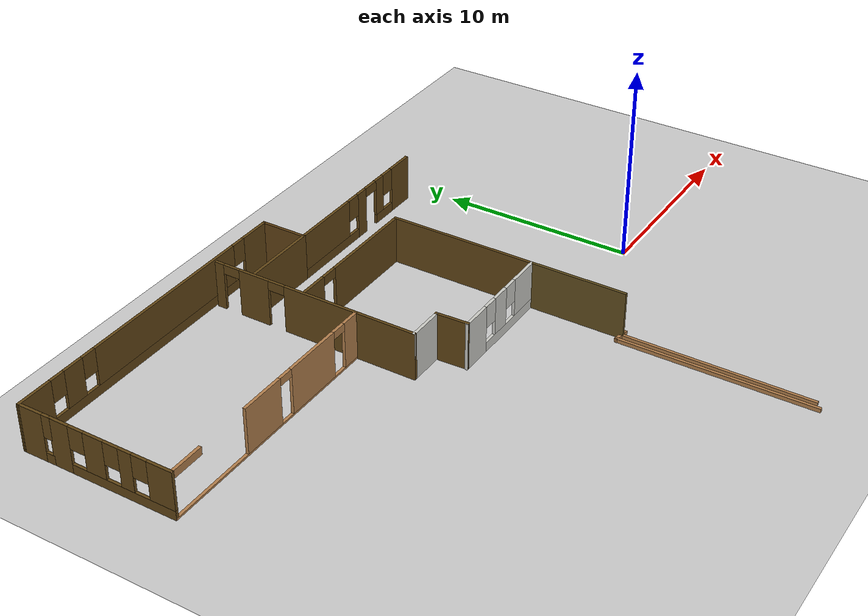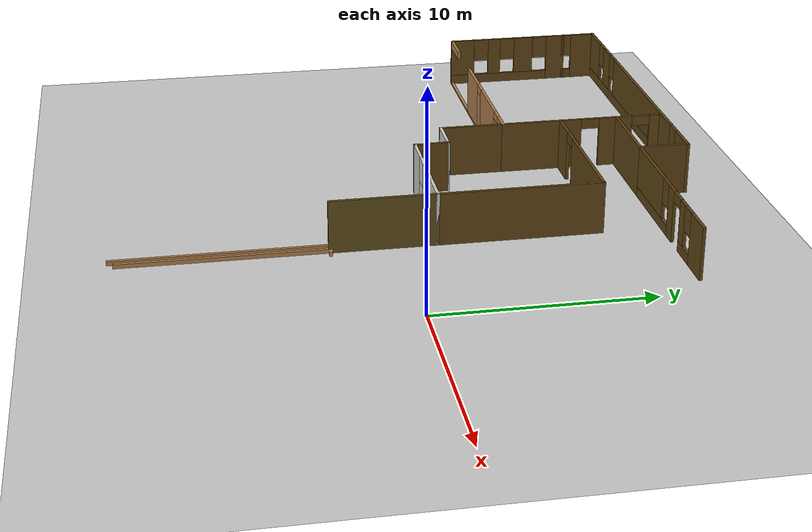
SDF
<sdf version="1.6">
 <world name="default">
  <model name="ground_plane">
   <static>1</static>
   <link name="link">
    <collision name="collision">
     <geometry><plane><normal>0 0 1</normal><size>100 100</size></plane></geometry>
     <surface>
      <contact><collide_bitmask>65535</collide_bitmask></contact>
      <friction><ode><mu>100</mu><mu2>50</mu2></ode></friction>
     </surface>
    </collision>
    <visual name="visual">
     <cast_shadows>0</cast_shadows>
     <geometry><plane><normal>0 0 1</normal><size>100 100</size></plane></geometry>
     <material>
      <script><uri>file://media/materials/scripts/gazebo.material</uri><name>Gazebo/Grey</name></script>
     </material>
    </visual>
   </link>
  </model>
  <model name="BuildMyWorld">
   <pose>-3.99019 0.7838 0 0 -0 0</pose>
   <link name="Wall_104">
    <collision name="Wall_104_Collision">
     <geometry><box><size>5 0.15 2.5</size></box></geometry>
     <pose>0 0 1.25 0 -0 0</pose>
    </collision>
    <visual name="Wall_104_Visual">
     <pose>0 0 1.25 0 -0 0</pose>
     <geometry><box><size>5 0.15 2.5</size></box></geometry>
     <material>
      <script><uri>file://media/materials/scripts/gazebo.material</uri><name>Gazebo/Grey</name></script>
      <ambient>0.384314 0.305882 0.117647 1</ambient>
     </material>
     <meta><layer>0</layer></meta>
    </visual>
    <pose>-2.57572 -1.51375 0 0 0 -1.57084</pose>
   </link>
   <link name="Wall_106">
    <collision name="Wall_106_Collision">
     <geometry><box><size>9.59713 0.15 0.2</size></box></geometry>
     <pose>0 0 0.1 0 -0 0</pose>
    </collision>
    <visual name="Wall_106_Visual">
     <pose>0 0 0.1 0 -0 0</pose>
     <geometry><box><size>9.59713 0.15 0.2</size></box></geometry>
     <material>
      <script><uri>file://media/materials/scripts/gazebo.material</uri><name>Gazebo/Wood</name></script>
      <ambient>1 1 1 1</ambient>
     </material>
     <meta><layer>0</layer></meta>
    </visual>
    <pose>-2.59331 -8.66228 0 0 -0 1.56709</pose>
   </link>
   <link name="Wall_44">
    <pose>-23.1606 8.78629 0 0 0 -1.5708</pose>
    <visual name="Wall_44_Visual_0">
     <pose>-2.72951 0 1.25 0 -0 0</pose>
     <geometry><box><size>1.04099 0.15 2.5</size></box></geometry>
     <material>
      <script><uri>file://media/materials/scripts/gazebo.material</uri><name>Gazebo/Grey</name></script>
      <ambient>0.384314 0.27451 0.0862745 1</ambient>
     </material>
     <meta><layer>0</layer></meta>
    </visual>
    <collision name="Wall_44_Collision_0">
     <geometry><box><size>1.04099 0.15 2.5</size></box></geometry>
     <pose>-2.72951 0 1.25 0 -0 0</pose>
    </collision>
    <visual name="Wall_44_Visual_1">
     <pose>0.520493 0 0.25 0 -0 0</pose>
     <geometry><box><size>5.45901 0.15 0.5</size></box></geometry>
     <material>
      <script><uri>file://media/materials/scripts/gazebo.material</uri><name>Gazebo/Grey</name></script>
      <ambient>0.384314 0.27451 0.0862745 1</ambient>
     </material>
     <meta><layer>0</layer></meta>
    </visual>
    <collision name="Wall_44_Collision_1">
     <geometry><box><size>5.45901 0.15 0.5</size></box></geometry>
     <pose>0.520493 0 0.25 0 -0 0</pose>
    </collision>
    <visual name="Wall_44_Visual_2">
     <pose>-0.878007 0 1.5 0 -0 0</pose>
     <geometry><box><size>1.06201 0.15 2</size></box></geometry>
     <material>
      <script><uri>file://media/materials/scripts/gazebo.material</uri><name>Gazebo/Grey</name></script>
      <ambient>0.384314 0.27451 0.0862745 1</ambient>
     </material>
     <meta><layer>0</layer></meta>
    </visual>
    <collision name="Wall_44_Collision_2">
     <geometry><box><size>1.06201 0.15 2</size></box></geometry>
     <pose>-0.878007 0 1.5 0 -0 0</pose>
    </collision>
    <visual name="Wall_44_Visual_3">
     <pose>0.797805 0 1.5 0 -0 0</pose>
     <geometry><box><size>0.689611 0.15 2</size></box></geometry>
     <material>
      <script><uri>file://media/materials/scripts/gazebo.material</uri><name>Gazebo/Grey</name></script>
      <ambient>0.384314 0.27451 0.0862745 1</ambient>
     </material>
     <meta><layer>0</layer></meta>
    </visual>
    <collision name="Wall_44_Collision_3">
     <geometry><box><size>0.689611 0.15 2</size></box></geometry>
     <pose>0.797805 0 1.5 0 -0 0</pose>
    </collision>
    <visual name="Wall_44_Visual_4">
     <pose>2.59631 0 1.5 0 -0 0</pose>
     <geometry><box><size>1.30739 0.15 2</size></box></geometry>
     <material>
      <script><uri>file://media/materials/scripts/gazebo.material</uri><name>Gazebo/Grey</name></script>
      <ambient>0.384314 0.27451 0.0862745 1</ambient>
     </material>
     <meta><layer>0</layer></meta>
    </visual>
    <collision name="Wall_44_Collision_4">
     <geometry><box><size>1.30739 0.15 2</size></box></geometry>
     <pose>2.59631 0 1.5 0 -0 0</pose>
    </collision>
    <visual name="Wall_44_Visual_5">
     <pose>-1.80901 0 1.9 0 -0 0</pose>
     <geometry><box><size>0.8 0.15 1.2</size></box></geometry>
     <material>
      <script><uri>file://media/materials/scripts/gazebo.material</uri><name>Gazebo/Grey</name></script>
      <ambient>0.384314 0.27451 0.0862745 1</ambient>
     </material>
     <meta><layer>0</layer></meta>
    </visual>
    <collision name="Wall_44_Collision_5">
     <geometry><box><size>0.8 0.15 1.2</size></box></geometry>
     <pose>-1.80901 0 1.9 0 -0 0</pose>
    </collision>
    <visual name="Wall_44_Visual_6">
     <pose>0.052999 0 1.9 0 -0 0</pose>
     <geometry><box><size>0.8 0.15 1.2</size></box></geometry>
     <material>
      <script><uri>file://media/materials/scripts/gazebo.material</uri><name>Gazebo/Grey</name></script>
      <ambient>0.384314 0.27451 0.0862745 1</ambient>
     </material>
     <meta><layer>0</layer></meta>
    </visual>
    <collision name="Wall_44_Collision_6">
     <geometry><box><size>0.8 0.15 1.2</size></box></geometry>
     <pose>0.052999 0 1.9 0 -0 0</pose>
    </collision>
    <visual name="Wall_44_Visual_7">
     <pose>1.54261 0 1.9 0 -0 0</pose>
     <geometry><box><size>0.8 0.15 1.2</size></box></geometry>
     <material>
      <script><uri>file://media/materials/scripts/gazebo.material</uri><name>Gazebo/Grey</name></script>
      <ambient>0.384314 0.27451 0.0862745 1</ambient>
     </material>
     <meta><layer>0</layer></meta>
    </visual>
    <collision name="Wall_44_Collision_7">
     <geometry><box><size>0.8 0.15 1.2</size></box></geometry>
     <pose>1.54261 0 1.9 0 -0 0</pose>
    </collision>
   </link>
   <link name="Wall_45">
    <pose>-16.7356 5.61129 0 0 -0 0</pose>
    <visual name="Wall_45_Visual_0">
     <pose>-6.49366 0 1.25 0 -0 0</pose>
     <geometry><box><size>0.01268 0.15 2.5</size></box></geometry>
     <material>
      <script><uri>file://media/materials/scripts/gazebo.material</uri><name>Gazebo/Wood</name></script>
      <ambient>0.384314 0.27451 0.0862745 1</ambient>
     </material>
     <meta><layer>0</layer></meta>
    </visual>
    <collision name="Wall_45_Collision_0">
     <geometry><box><size>0.01268 0.15 2.5</size></box></geometry>
     <pose>-6.49366 0 1.25 0 -0 0</pose>
    </collision>
    <visual name="Wall_45_Visual_1">
     <pose>0.00634 0 0.05 0 -0 0</pose>
     <geometry><box><size>12.9873 0.15 0.1</size></box></geometry>
     <material>
      <script><uri>file://media/materials/scripts/gazebo.material</uri><name>Gazebo/Wood</name></script>
      <ambient>0.384314 0.27451 0.0862745 1</ambient>
     </material>
     <meta><layer>0</layer></meta>
    </visual>
    <collision name="Wall_45_Collision_1">
     <geometry><box><size>12.9873 0.15 0.1</size></box></geometry>
     <pose>0.00634 0 0.05 0 -0 0</pose>
    </collision>
    <visual name="Wall_45_Visual_2">
     <pose>-0.555122 0 1.3 0 -0 0</pose>
     <geometry><box><size>2.41817 0.15 2.4</size></box></geometry>
     <material>
      <script><uri>file://media/materials/scripts/gazebo.material</uri><name>Gazebo/Wood</name></script>
      <ambient>0.384314 0.27451 0.0862745 1</ambient>
     </material>
     <meta><layer>0</layer></meta>
    </visual>
    <collision name="Wall_45_Collision_2">
     <geometry><box><size>2.41817 0.15 2.4</size></box></geometry>
     <pose>-0.555122 0 1.3 0 -0 0</pose>
    </collision>
    <visual name="Wall_45_Visual_3">
     <pose>3.03034 0 1.3 0 -0 0</pose>
     <geometry><box><size>3.15275 0.15 2.4</size></box></geometry>
     <material>
      <script><uri>file://media/materials/scripts/gazebo.material</uri><name>Gazebo/Wood</name></script>
      <ambient>0.384314 0.27451 0.0862745 1</ambient>
     </material>
     <meta><layer>0</layer></meta>
    </visual>
    <collision name="Wall_45_Collision_3">
     <geometry><box><size>3.15275 0.15 2.4</size></box></geometry>
     <pose>3.03034 0 1.3 0 -0 0</pose>
    </collision>
    <visual name="Wall_45_Visual_4">
     <pose>5.95336 0 1.3 0 -0 0</pose>
     <geometry><box><size>1.09328 0.15 2.4</size></box></geometry>
     <material>
      <script><uri>file://media/materials/scripts/gazebo.material</uri><name>Gazebo/Wood</name></script>
      <ambient>0.384314 0.27451 0.0862745 1</ambient>
     </material>
     <meta><layer>0</layer></meta>
    </visual>
    <collision name="Wall_45_Collision_4">
     <geometry><box><size>1.09328 0.15 2.4</size></box></geometry>
     <pose>5.95336 0 1.3 0 -0 0</pose>
    </collision>
    <visual name="Wall_45_Visual_5">
     <pose>-5.55274 0 2.3 0 -0 0</pose>
     <geometry><box><size>1.86917 0.15 0.4</size></box></geometry>
     <material>
      <script><uri>file://media/materials/scripts/gazebo.material</uri><name>Gazebo/Wood</name></script>
      <ambient>0.384314 0.27451 0.0862745 1</ambient>
     </material>
     <meta><layer>0</layer></meta>
    </visual>
    <collision name="Wall_45_Collision_5">
     <geometry><box><size>1.86917 0.15 0.4</size></box></geometry>
     <pose>-5.55274 0 2.3 0 -0 0</pose>
    </collision>
    <visual name="Wall_45_Visual_6">
     <pose>1.05396 0 2.3 0 -0 0</pose>
     <geometry><box><size>0.8 0.15 0.4</size></box></geometry>
     <material>
      <script><uri>file://media/materials/scripts/gazebo.material</uri><name>Gazebo/Wood</name></script>
      <ambient>0.384314 0.27451 0.0862745 1</ambient>
     </material>
     <meta><layer>0</layer></meta>
    </visual>
    <collision name="Wall_45_Collision_6">
     <geometry><box><size>0.8 0.15 0.4</size></box></geometry>
     <pose>1.05396 0 2.3 0 -0 0</pose>
    </collision>
    <visual name="Wall_45_Visual_7">
     <pose>5.00672 0 2.3 0 -0 0</pose>
     <geometry><box><size>0.8 0.15 0.4</size></box></geometry>
     <material>
      <script><uri>file://media/materials/scripts/gazebo.material</uri><name>Gazebo/Wood</name></script>
      <ambient>0.384314 0.27451 0.0862745 1</ambient>
     </material>
     <meta><layer>0</layer></meta>
    </visual>
    <collision name="Wall_45_Collision_7">
     <geometry><box><size>0.8 0.15 0.4</size></box></geometry>
     <pose>5.00672 0 2.3 0 -0 0</pose>
    </collision>
   </link>
   <link name="Wall_46">
    <collision name="Wall_46_Collision">
     <geometry><box><size>3.25 0.15 2.5</size></box></geometry>
     <pose>0 0 1.25 0 -0 0</pose>
    </collision>
    <visual name="Wall_46_Visual">
     <pose>0 0 1.25 0 -0 0</pose>
     <geometry><box><size>3.25 0.15 2.5</size></box></geometry>
     <material>
      <script><uri>file://media/materials/scripts/gazebo.material</uri><name>Gazebo/Grey</name></script>
      <ambient>0.384314 0.27451 0.0862745 1</ambient>
     </material>
     <meta><layer>0</layer></meta>
    </visual>
    <pose>-10.3106 4.06129 0 0 0 -1.5708</pose>
   </link>
   <link name="Wall_47">
    <collision name="Wall_47_Collision">
     <geometry><box><size>2 0.15 2.5</size></box></geometry>
     <pose>0 0 1.25 0 -0 0</pose>
    </collision>
    <visual name="Wall_47_Visual">
     <pose>0 0 1.25 0 -0 0</pose>
     <geometry><box><size>2 0.15 2.5</size></box></geometry>
     <material>
      <script><uri>file://media/materials/scripts/gazebo.material</uri><name>Gazebo/CeilingTiled</name></script>
      <ambient>0.384314 0.27451 0.0862745 1</ambient>
     </material>
     <meta><layer>0</layer></meta>
    </visual>
    <pose>-9.3856 2.51129 0 0 -0 0</pose>
   </link>
   <link name="Wall_48">
    <collision name="Wall_48_Collision">
     <geometry><box><size>1.75153 0.15 2.5</size></box></geometry>
     <pose>0 0 1.25 0 -0 0</pose>
    </collision>
    <visual name="Wall_48_Visual">
     <pose>0 0 1.25 0 -0 0</pose>
     <geometry><box><size>1.75153 0.15 2.5</size></box></geometry>
     <material>
      <script><uri>file://media/materials/scripts/gazebo.material</uri><name>Gazebo/Grey</name></script>
      <ambient>0.384314 0.27451 0.0862745 1</ambient>
     </material>
     <meta><layer>0</layer></meta>
    </visual>
    <pose>-8.42562 1.71129 0 0 0 -1.5271</pose>
   </link>
   <link name="Wall_49">
    <pose>-5.50062 0.911286 0 0 -0 0</pose>
    <visual name="Wall_49_Visual_0">
     <pose>-2.18282 0 1.25 0 -0 0</pose>
     <geometry><box><size>1.63437 0.15 2.5</size></box></geometry>
     <material>
      <script><uri>file://media/materials/scripts/gazebo.material</uri><name>Gazebo/CeilingTiled</name></script>
      <ambient>0.384314 0.258824 0.0823529 1</ambient>
     </material>
     <meta><layer>0</layer></meta>
    </visual>
    <collision name="Wall_49_Collision_0">
     <geometry><box><size>1.63437 0.15 2.5</size></box></geometry>
     <pose>-2.18282 0 1.25 0 -0 0</pose>
    </collision>
    <visual name="Wall_49_Visual_1">
     <pose>0.817182 0 0.25 0 -0 0</pose>
     <geometry><box><size>4.36564 0.15 0.5</size></box></geometry>
     <material>
      <script><uri>file://media/materials/scripts/gazebo.material</uri><name>Gazebo/CeilingTiled</name></script>
      <ambient>0.384314 0.258824 0.0823529 1</ambient>
     </material>
     <meta><layer>0</layer></meta>
    </visual>
    <collision name="Wall_49_Collision_1">
     <geometry><box><size>4.36564 0.15 0.5</size></box></geometry>
     <pose>0.817182 0 0.25 0 -0 0</pose>
    </collision>
    <visual name="Wall_49_Visual_2">
     <pose>-0.068208 0 1.5 0 -0 0</pose>
     <geometry><box><size>0.994855 0.15 2</size></box></geometry>
     <material>
      <script><uri>file://media/materials/scripts/gazebo.material</uri><name>Gazebo/CeilingTiled</name></script>
      <ambient>0.384314 0.258824 0.0823529 1</ambient>
     </material>
     <meta><layer>0</layer></meta>
    </visual>
    <collision name="Wall_49_Collision_2">
     <geometry><box><size>0.994855 0.15 2</size></box></geometry>
     <pose>-0.068208 0 1.5 0 -0 0</pose>
    </collision>
    <visual name="Wall_49_Visual_3">
     <pose>2.11461 0 1.5 0 -0 0</pose>
     <geometry><box><size>1.77078 0.15 2</size></box></geometry>
     <material>
      <script><uri>file://media/materials/scripts/gazebo.material</uri><name>Gazebo/CeilingTiled</name></script>
      <ambient>0.384314 0.258824 0.0823529 1</ambient>
     </material>
     <meta><layer>0</layer></meta>
    </visual>
    <collision name="Wall_49_Collision_3">
     <geometry><box><size>1.77078 0.15 2</size></box></geometry>
     <pose>2.11461 0 1.5 0 -0 0</pose>
    </collision>
    <visual name="Wall_49_Visual_4">
     <pose>-0.965635 0 1.9 0 -0 0</pose>
     <geometry><box><size>0.8 0.15 1.2</size></box></geometry>
     <material>
      <script><uri>file://media/materials/scripts/gazebo.material</uri><name>Gazebo/CeilingTiled</name></script>
      <ambient>0.384314 0.258824 0.0823529 1</ambient>
     </material>
     <meta><layer>0</layer></meta>
    </visual>
    <collision name="Wall_49_Collision_4">
     <geometry><box><size>0.8 0.15 1.2</size></box></geometry>
     <pose>-0.965635 0 1.9 0 -0 0</pose>
    </collision>
    <visual name="Wall_49_Visual_5">
     <pose>0.82922 0 1.9 0 -0 0</pose>
     <geometry><box><size>0.8 0.15 1.2</size></box></geometry>
     <material>
      <script><uri>file://media/materials/scripts/gazebo.material</uri><name>Gazebo/CeilingTiled</name></script>
      <ambient>0.384314 0.258824 0.0823529 1</ambient>
     </material>
     <meta><layer>0</layer></meta>
    </visual>
    <collision name="Wall_49_Collision_5">
     <geometry><box><size>0.8 0.15 1.2</size></box></geometry>
     <pose>0.82922 0 1.9 0 -0 0</pose>
    </collision>
   </link>
   <link name="Wall_67">
    <pose>-1.77525 11.3544 0 0 -0 3.14159</pose>
    <visual name="Wall_67_Visual_0">
     <pose>-3.8555 0 1.25 0 -0 0</pose>
     <geometry><box><size>1.53901 0.15 2.5</size></box></geometry>
     <material>
      <script><uri>file://media/materials/scripts/gazebo.material</uri><name>Gazebo/Grey</name></script>
      <ambient>0.384314 0.27451 0.0862745 1</ambient>
     </material>
     <meta><layer>0</layer></meta>
    </visual>
    <collision name="Wall_67_Collision_0">
     <geometry><box><size>1.53901 0.15 2.5</size></box></geometry>
     <pose>-3.8555 0 1.25 0 -0 0</pose>
    </collision>
    <visual name="Wall_67_Visual_1">
     <pose>-0.385209 0 1.25 0 -0 0</pose>
     <geometry><box><size>0.704912 0.15 2.5</size></box></geometry>
     <material>
      <script><uri>file://media/materials/scripts/gazebo.material</uri><name>Gazebo/Grey</name></script>
      <ambient>0.384314 0.27451 0.0862745 1</ambient>
     </material>
     <meta><layer>0</layer></meta>
    </visual>
    <collision name="Wall_67_Collision_1">
     <geometry><box><size>0.704912 0.15 2.5</size></box></geometry>
     <pose>-0.385209 0 1.25 0 -0 0</pose>
    </collision>
    <visual name="Wall_67_Visual_2">
     <pose>-2.36183 0 0.25 0 -0 0</pose>
     <geometry><box><size>1.44833 0.15 0.5</size></box></geometry>
     <material>
      <script><uri>file://media/materials/scripts/gazebo.material</uri><name>Gazebo/Grey</name></script>
      <ambient>0.384314 0.27451 0.0862745 1</ambient>
     </material>
     <meta><layer>0</layer></meta>
    </visual>
    <collision name="Wall_67_Collision_2">
     <geometry><box><size>1.44833 0.15 0.5</size></box></geometry>
     <pose>-2.36183 0 0.25 0 -0 0</pose>
    </collision>
    <visual name="Wall_67_Visual_3">
     <pose>2.29612 0 0.25 0 -0 0</pose>
     <geometry><box><size>4.65775 0.15 0.5</size></box></geometry>
     <material>
      <script><uri>file://media/materials/scripts/gazebo.material</uri><name>Gazebo/Grey</name></script>
      <ambient>0.384314 0.27451 0.0862745 1</ambient>
     </material>
     <meta><layer>0</layer></meta>
    </visual>
    <collision name="Wall_67_Collision_3">
     <geometry><box><size>4.65775 0.15 0.5</size></box></geometry>
     <pose>2.29612 0 0.25 0 -0 0</pose>
    </collision>
    <visual name="Wall_67_Visual_4">
     <pose>-1.96183 0 1.5 0 -0 0</pose>
     <geometry><box><size>0.648328 0.15 2</size></box></geometry>
     <material>
      <script><uri>file://media/materials/scripts/gazebo.material</uri><name>Gazebo/Grey</name></script>
      <ambient>0.384314 0.27451 0.0862745 1</ambient>
     </material>
     <meta><layer>0</layer></meta>
    </visual>
    <collision name="Wall_67_Collision_4">
     <geometry><box><size>0.648328 0.15 2</size></box></geometry>
     <pose>-1.96183 0 1.5 0 -0 0</pose>
    </collision>
    <visual name="Wall_67_Visual_5">
     <pose>-1.96183 0 1.5 0 -0 0</pose>
     <geometry><box><size>0.648328 0.15 2</size></box></geometry>
     <material>
      <script><uri>file://media/materials/scripts/gazebo.material</uri><name>Gazebo/Grey</name></script>
      <ambient>0.384314 0.27451 0.0862745 1</ambient>
     </material>
     <meta><layer>0</layer></meta>
    </visual>
    <collision name="Wall_67_Collision_5">
     <geometry><box><size>0.648328 0.15 2</size></box></geometry>
     <pose>-1.96183 0 1.5 0 -0 0</pose>
    </collision>
    <visual name="Wall_67_Visual_6">
     <pose>2.69612 0 1.5 0 -0 0</pose>
     <geometry><box><size>3.85775 0.15 2</size></box></geometry>
     <material>
      <script><uri>file://media/materials/scripts/gazebo.material</uri><name>Gazebo/Grey</name></script>
      <ambient>0.384314 0.27451 0.0862745 1</ambient>
     </material>
     <meta><layer>0</layer></meta>
    </visual>
    <collision name="Wall_67_Collision_6">
     <geometry><box><size>3.85775 0.15 2</size></box></geometry>
     <pose>2.69612 0 1.5 0 -0 0</pose>
    </collision>
    <visual name="Wall_67_Visual_7">
     <pose>-2.68599 0 1.9 0 -0 0</pose>
     <geometry><box><size>0.8 0.15 1.2</size></box></geometry>
     <material>
      <script><uri>file://media/materials/scripts/gazebo.material</uri><name>Gazebo/Grey</name></script>
      <ambient>0.384314 0.27451 0.0862745 1</ambient>
     </material>
     <meta><layer>0</layer></meta>
    </visual>
    <collision name="Wall_67_Collision_7">
     <geometry><box><size>0.8 0.15 1.2</size></box></geometry>
     <pose>-2.68599 0 1.9 0 -0 0</pose>
    </collision>
    <visual name="Wall_67_Visual_8">
     <pose>0.367247 0 1.9 0 -0 0</pose>
     <geometry><box><size>0.8 0.15 1.2</size></box></geometry>
     <material>
      <script><uri>file://media/materials/scripts/gazebo.material</uri><name>Gazebo/Grey</name></script>
      <ambient>0.384314 0.27451 0.0862745 1</ambient>
     </material>
     <meta><layer>0</layer></meta>
    </visual>
    <collision name="Wall_67_Collision_8">
     <geometry><box><size>0.8 0.15 1.2</size></box></geometry>
     <pose>0.367247 0 1.9 0 -0 0</pose>
    </collision>
    <visual name="Wall_67_Visual_9">
     <pose>-1.18766 0 2.25 0 -0 0</pose>
     <geometry><box><size>0.9 0.15 0.5</size></box></geometry>
     <material>
      <script><uri>file://media/materials/scripts/gazebo.material</uri><name>Gazebo/Grey</name></script>
      <ambient>0.384314 0.27451 0.0862745 1</ambient>
     </material>
     <meta><layer>0</layer></meta>
    </visual>
    <collision name="Wall_67_Collision_9">
     <geometry><box><size>0.9 0.15 0.5</size></box></geometry>
     <pose>-1.18766 0 2.25 0 -0 0</pose>
    </collision>
    <visual name="Wall_67_Visual_10">
     <pose>-1.18766 0 2.25 0 -0 0</pose>
     <geometry><box><size>0.9 0.15 0.5</size></box></geometry>
     <material>
      <script><uri>file://media/materials/scripts/gazebo.material</uri><name>Gazebo/Grey</name></script>
      <ambient>0.384314 0.27451 0.0862745 1</ambient>
     </material>
     <meta><layer>0</layer></meta>
    </visual>
    <collision name="Wall_67_Collision_10">
     <geometry><box><size>0.9 0.15 0.5</size></box></geometry>
     <pose>-1.18766 0 2.25 0 -0 0</pose>
    </collision>
   </link>
   <link name="Wall_68">
    <collision name="Wall_68_Collision">
     <geometry><box><size>2.5 0.15 2.5</size></box></geometry>
     <pose>0 0 1.25 0 -0 0</pose>
    </collision>
    <visual name="Wall_68_Visual">
     <pose>0 0 1.25 0 -0 0</pose>
     <geometry><box><size>2.5 0.15 2.5</size></box></geometry>
     <material>
      <script><uri>file://media/materials/scripts/gazebo.material</uri><name>Gazebo/Grey</name></script>
      <ambient>0.384314 0.258824 0.0823529 1</ambient>
     </material>
     <meta><layer>0</layer></meta>
    </visual>
    <pose>-6.32525 12.5294 0 0 -0 1.5708</pose>
   </link>
   <link name="Wall_69">
    <pose>-14.7502 13.7044 0 0 -0 3.14159</pose>
    <visual name="Wall_69_Visual_0">
     <pose>-7.60811 0 1.25 0 -0 0</pose>
     <geometry><box><size>1.78377 0.15 2.5</size></box></geometry>
     <material>
      <script><uri>file://media/materials/scripts/gazebo.material</uri><name>Gazebo/Grey</name></script>
      <ambient>0.384314 0.27451 0.0862745 1</ambient>
     </material>
     <meta><layer>0</layer></meta>
    </visual>
    <collision name="Wall_69_Collision_0">
     <geometry><box><size>1.78377 0.15 2.5</size></box></geometry>
     <pose>-7.60811 0 1.25 0 -0 0</pose>
    </collision>
    <visual name="Wall_69_Visual_1">
     <pose>0.891886 0 0.25 0 -0 0</pose>
     <geometry><box><size>15.2162 0.15 0.5</size></box></geometry>
     <material>
      <script><uri>file://media/materials/scripts/gazebo.material</uri><name>Gazebo/Grey</name></script>
      <ambient>0.384314 0.27451 0.0862745 1</ambient>
     </material>
     <meta><layer>0</layer></meta>
    </visual>
    <collision name="Wall_69_Collision_1">
     <geometry><box><size>15.2162 0.15 0.5</size></box></geometry>
     <pose>0.891886 0 0.25 0 -0 0</pose>
    </collision>
    <visual name="Wall_69_Visual_2">
     <pose>-1.04245 0 1.5 0 -0 0</pose>
     <geometry><box><size>9.74756 0.15 2</size></box></geometry>
     <material>
      <script><uri>file://media/materials/scripts/gazebo.material</uri><name>Gazebo/Grey</name></script>
      <ambient>0.384314 0.27451 0.0862745 1</ambient>
     </material>
     <meta><layer>0</layer></meta>
    </visual>
    <collision name="Wall_69_Collision_2">
     <geometry><box><size>9.74756 0.15 2</size></box></geometry>
     <pose>-1.04245 0 1.5 0 -0 0</pose>
    </collision>
    <visual name="Wall_69_Visual_3">
     <pose>5.20282 0 1.5 0 -0 0</pose>
     <geometry><box><size>1.14297 0.15 2</size></box></geometry>
     <material>
      <script><uri>file://media/materials/scripts/gazebo.material</uri><name>Gazebo/Grey</name></script>
      <ambient>0.384314 0.27451 0.0862745 1</ambient>
     </material>
     <meta><layer>0</layer></meta>
    </visual>
    <collision name="Wall_69_Collision_3">
     <geometry><box><size>1.14297 0.15 2</size></box></geometry>
     <pose>5.20282 0 1.5 0 -0 0</pose>
    </collision>
    <visual name="Wall_69_Visual_4">
     <pose>7.53715 0 1.5 0 -0 0</pose>
     <geometry><box><size>1.9257 0.15 2</size></box></geometry>
     <material>
      <script><uri>file://media/materials/scripts/gazebo.material</uri><name>Gazebo/Grey</name></script>
      <ambient>0.384314 0.27451 0.0862745 1</ambient>
     </material>
     <meta><layer>0</layer></meta>
    </visual>
    <collision name="Wall_69_Collision_4">
     <geometry><box><size>1.9257 0.15 2</size></box></geometry>
     <pose>7.53715 0 1.5 0 -0 0</pose>
    </collision>
    <visual name="Wall_69_Visual_5">
     <pose>-6.31623 0 1.9 0 -0 0</pose>
     <geometry><box><size>0.8 0.15 1.2</size></box></geometry>
     <material>
      <script><uri>file://media/materials/scripts/gazebo.material</uri><name>Gazebo/Grey</name></script>
      <ambient>0.384314 0.27451 0.0862745 1</ambient>
     </material>
     <meta><layer>0</layer></meta>
    </visual>
    <collision name="Wall_69_Collision_5">
     <geometry><box><size>0.8 0.15 1.2</size></box></geometry>
     <pose>-6.31623 0 1.9 0 -0 0</pose>
    </collision>
    <visual name="Wall_69_Visual_6">
     <pose>4.23133 0 1.9 0 -0 0</pose>
     <geometry><box><size>0.8 0.15 1.2</size></box></geometry>
     <material>
      <script><uri>file://media/materials/scripts/gazebo.material</uri><name>Gazebo/Grey</name></script>
      <ambient>0.384314 0.27451 0.0862745 1</ambient>
     </material>
     <meta><layer>0</layer></meta>
    </visual>
    <collision name="Wall_69_Collision_6">
     <geometry><box><size>0.8 0.15 1.2</size></box></geometry>
     <pose>4.23133 0 1.9 0 -0 0</pose>
    </collision>
    <visual name="Wall_69_Visual_7">
     <pose>6.1743 0 1.9 0 -0 0</pose>
     <geometry><box><size>0.8 0.15 1.2</size></box></geometry>
     <material>
      <script><uri>file://media/materials/scripts/gazebo.material</uri><name>Gazebo/Grey</name></script>
      <ambient>0.384314 0.27451 0.0862745 1</ambient>
     </material>
     <meta><layer>0</layer></meta>
    </visual>
    <collision name="Wall_69_Collision_7">
     <geometry><box><size>0.8 0.15 1.2</size></box></geometry>
     <pose>6.1743 0 1.9 0 -0 0</pose>
    </collision>
   </link>
   <link name="Wall_70">
    <pose>-23.1679 12.8328 0 0 0 -1.56239</pose>
    <visual name="Wall_70_Visual_0">
     <pose>-0.272644 0 1.25 0 -0 0</pose>
     <geometry><box><size>1.34786 0.15 2.5</size></box></geometry>
     <material>
      <script><uri>file://media/materials/scripts/gazebo.material</uri><name>Gazebo/Grey</name></script>
      <ambient>0.384314 0.27451 0.0862745 1</ambient>
     </material>
     <meta><layer>0</layer></meta>
    </visual>
    <collision name="Wall_70_Collision_0">
     <geometry><box><size>1.34786 0.15 2.5</size></box></geometry>
     <pose>-0.272644 0 1.25 0 -0 0</pose>
    </collision>
    <visual name="Wall_70_Visual_1">
     <pose>0.673928 0 0.25 0 -0 0</pose>
     <geometry><box><size>0.545287 0.15 0.5</size></box></geometry>
     <material>
      <script><uri>file://media/materials/scripts/gazebo.material</uri><name>Gazebo/Grey</name></script>
      <ambient>0.384314 0.27451 0.0862745 1</ambient>
     </material>
     <meta><layer>0</layer></meta>
    </visual>
    <collision name="Wall_70_Collision_1">
     <geometry><box><size>0.545287 0.15 0.5</size></box></geometry>
     <pose>0.673928 0 0.25 0 -0 0</pose>
    </collision>
    <visual name="Wall_70_Visual_2">
     <pose>0.673928 0 1.9 0 -0 0</pose>
     <geometry><box><size>0.545287 0.15 1.2</size></box></geometry>
     <material>
      <script><uri>file://media/materials/scripts/gazebo.material</uri><name>Gazebo/Grey</name></script>
      <ambient>0.384314 0.27451 0.0862745 1</ambient>
     </material>
     <meta><layer>0</layer></meta>
    </visual>
    <collision name="Wall_70_Collision_2">
     <geometry><box><size>0.545287 0.15 1.2</size></box></geometry>
     <pose>0.673928 0 1.9 0 -0 0</pose>
    </collision>
   </link>
   <link name="Wall_72">
    <pose>-10.3106 9.53629 0 0 -0 1.5708</pose>
    <visual name="Wall_72_Visual_0">
     <pose>-1.98809 0 1.25 0 -0 0</pose>
     <geometry><box><size>4.02381 0.15 2.5</size></box></geometry>
     <material>
      <script><uri>file://media/materials/scripts/gazebo.material</uri><name>Gazebo/Grey</name></script>
      <ambient>0.384314 0.27451 0.0862745 1</ambient>
     </material>
     <meta><layer>0</layer></meta>
    </visual>
    <collision name="Wall_72_Collision_0">
     <geometry><box><size>4.02381 0.15 2.5</size></box></geometry>
     <pose>-1.98809 0 1.25 0 -0 0</pose>
    </collision>
    <visual name="Wall_72_Visual_1">
     <pose>1.75908 0 1.25 0 -0 0</pose>
     <geometry><box><size>1.67053 0.15 2.5</size></box></geometry>
     <material>
      <script><uri>file://media/materials/scripts/gazebo.material</uri><name>Gazebo/Grey</name></script>
      <ambient>0.384314 0.27451 0.0862745 1</ambient>
     </material>
     <meta><layer>0</layer></meta>
    </visual>
    <collision name="Wall_72_Collision_1">
     <geometry><box><size>1.67053 0.15 2.5</size></box></geometry>
     <pose>1.75908 0 1.25 0 -0 0</pose>
    </collision>
    <visual name="Wall_72_Visual_2">
     <pose>3.74717 0 1.25 0 -0 0</pose>
     <geometry><box><size>0.505657 0.15 2.5</size></box></geometry>
     <material>
      <script><uri>file://media/materials/scripts/gazebo.material</uri><name>Gazebo/Grey</name></script>
      <ambient>0.384314 0.27451 0.0862745 1</ambient>
     </material>
     <meta><layer>0</layer></meta>
    </visual>
    <collision name="Wall_72_Collision_2">
     <geometry><box><size>0.505657 0.15 2.5</size></box></geometry>
     <pose>3.74717 0 1.25 0 -0 0</pose>
    </collision>
    <visual name="Wall_72_Visual_3">
     <pose>0.47381 0 2.25 0 -0 0</pose>
     <geometry><box><size>0.9 0.15 0.5</size></box></geometry>
     <material>
      <script><uri>file://media/materials/scripts/gazebo.material</uri><name>Gazebo/Grey</name></script>
      <ambient>0.384314 0.27451 0.0862745 1</ambient>
     </material>
     <meta><layer>0</layer></meta>
    </visual>
    <collision name="Wall_72_Collision_3">
     <geometry><box><size>0.9 0.15 0.5</size></box></geometry>
     <pose>0.47381 0 2.25 0 -0 0</pose>
    </collision>
    <visual name="Wall_72_Visual_4">
     <pose>3.04434 0 2.25 0 -0 0</pose>
     <geometry><box><size>0.9 0.15 0.5</size></box></geometry>
     <material>
      <script><uri>file://media/materials/scripts/gazebo.material</uri><name>Gazebo/Grey</name></script>
      <ambient>0.384314 0.27451 0.0862745 1</ambient>
     </material>
     <meta><layer>0</layer></meta>
    </visual>
    <collision name="Wall_72_Collision_4">
     <geometry><box><size>0.9 0.15 0.5</size></box></geometry>
     <pose>3.04434 0 2.25 0 -0 0</pose>
    </collision>
   </link>
   <link name="Wall_74">
    <collision name="Wall_74_Collision">
     <geometry><box><size>4 0.15 2.5</size></box></geometry>
     <pose>0 0 1.25 0 -0 0</pose>
    </collision>
    <visual name="Wall_74_Visual">
     <pose>0 0 1.25 0 -0 0</pose>
     <geometry><box><size>4 0.15 2.5</size></box></geometry>
     <material>
      <script><uri>file://media/materials/scripts/gazebo.material</uri><name>Gazebo/Grey</name></script>
      <ambient>0.384314 0.27451 0.0862745 1</ambient>
     </material>
     <meta><layer>0</layer></meta>
    </visual>
    <pose>-8.25025 11.3544 0 0 -0 3.14159</pose>
   </link>
   <link name="Wall_81">
    <collision name="Wall_81_Collision">
     <geometry><box><size>7.74308 0.15 2.5</size></box></geometry>
     <pose>0 0 1.25 0 -0 0</pose>
    </collision>
    <visual name="Wall_81_Visual">
     <pose>0 0 1.25 0 -0 0</pose>
     <geometry><box><size>7.74308 0.15 2.5</size></box></geometry>
     <material>
      <script><uri>file://media/materials/scripts/gazebo.material</uri><name>Gazebo/Grey</name></script>
      <ambient>0.384314 0.27451 0.0862745 1</ambient>
     </material>
     <meta><layer>0</layer></meta>
    </visual>
    <pose>-2.57544 4.70783 0 0 0 -1.57085</pose>
   </link>
   <link name="Wall_88">
    <pose>-6.37525 8.50437 0 0 -0 3.14159</pose>
    <visual name="Wall_88_Visual_0">
     <pose>-1.1993 0 1.25 0 -0 0</pose>
     <geometry><box><size>5.35139 0.15 2.5</size></box></geometry>
     <material>
      <script><uri>file://media/materials/scripts/gazebo.material</uri><name>Gazebo/Grey</name></script>
      <ambient>0.384314 0.27451 0.0862745 1</ambient>
     </material>
     <meta><layer>0</layer></meta>
    </visual>
    <collision name="Wall_88_Collision_0">
     <geometry><box><size>5.35139 0.15 2.5</size></box></geometry>
     <pose>-1.1993 0 1.25 0 -0 0</pose>
    </collision>
    <visual name="Wall_88_Visual_1">
     <pose>3.1257 0 1.25 0 -0 0</pose>
     <geometry><box><size>1.49861 0.15 2.5</size></box></geometry>
     <material>
      <script><uri>file://media/materials/scripts/gazebo.material</uri><name>Gazebo/Grey</name></script>
      <ambient>0.384314 0.27451 0.0862745 1</ambient>
     </material>
     <meta><layer>0</layer></meta>
    </visual>
    <collision name="Wall_88_Collision_1">
     <geometry><box><size>1.49861 0.15 2.5</size></box></geometry>
     <pose>3.1257 0 1.25 0 -0 0</pose>
    </collision>
    <visual name="Wall_88_Visual_2">
     <pose>1.92639 0 2.25 0 -0 0</pose>
     <geometry><box><size>0.9 0.15 0.5</size></box></geometry>
     <material>
      <script><uri>file://media/materials/scripts/gazebo.material</uri><name>Gazebo/Grey</name></script>
      <ambient>0.384314 0.27451 0.0862745 1</ambient>
     </material>
     <meta><layer>0</layer></meta>
    </visual>
    <collision name="Wall_88_Collision_2">
     <geometry><box><size>0.9 0.15 0.5</size></box></geometry>
     <pose>1.92639 0 2.25 0 -0 0</pose>
    </collision>
   </link>
   <link name="Wall_98">
    <collision name="Wall_98_Collision">
     <geometry><box><size>0.854527 0.15 0.2</size></box></geometry>
     <pose>0 0 0.1 0 -0 0</pose>
    </collision>
    <visual name="Wall_98_Visual">
     <pose>0 0 0.1 0 -0 0</pose>
     <geometry><box><size>0.854527 0.15 0.2</size></box></geometry>
     <material>
      <script><uri>file://media/materials/scripts/gazebo.material</uri><name>Gazebo/Wood</name></script>
      <ambient>1 1 1 1</ambient>
     </material>
     <meta><layer>0</layer></meta>
    </visual>
    <pose>-2.61449 -3.90021 0 0 -0 3.01228</pose>
   </link>
   <link name="Wall_99">
    <collision name="Wall_99_Collision">
     <geometry><box><size>9.965 0.15 0.2</size></box></geometry>
     <pose>0 0 0.1 0 -0 0</pose>
    </collision>
    <visual name="Wall_99_Visual">
     <pose>0 0 0.1 0 -0 0</pose>
     <geometry><box><size>9.965 0.15 0.2</size></box></geometry>
     <material>
      <script><uri>file://media/materials/scripts/gazebo.material</uri><name>Gazebo/Wood</name></script>
      <ambient>1 1 1 1</ambient>
     </material>
     <meta><layer>0</layer></meta>
    </visual>
    <pose>-2.96381 -8.76228 0 0 0 -1.5708</pose>
   </link>
   <static>1</static>
  </model>
 </world>
</sdf>
